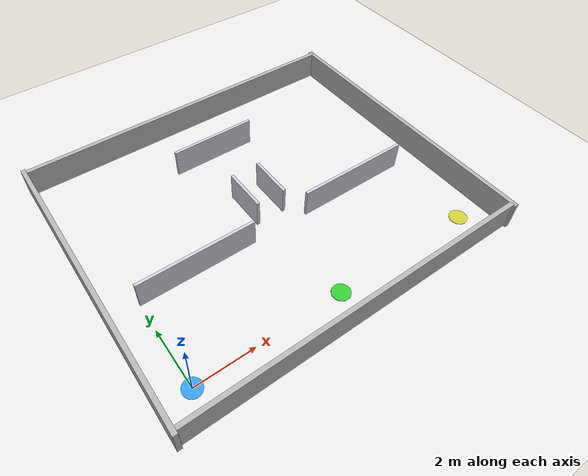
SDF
<?xml version="1.0" ?>
<sdf version="1.6">
  <world name="office">

    <!-- 物理エンジン -->
    <physics type="ode">
      <max_step_size>0.001</max_step_size>
      <real_time_factor>1.0</real_time_factor>
    </physics>

    <!-- 照明 -->
    <light name="sun" type="directional">
      <cast_shadows>true</cast_shadows>
      <pose>5 4 10 0 0 0</pose>
      <diffuse>0.8 0.8 0.8 1</diffuse>
      <specular>0.2 0.2 0.2 1</specular>
      <direction>-0.5 0.1 -0.9</direction>
    </light>

    <light name="ceiling_1" type="point">
      <pose>5 4 3 0 0 0</pose>
      <diffuse>0.4 0.4 0.4 1</diffuse>
      <range>20</range>
    </light>

    <!-- 地面 -->
    <model name="ground_plane">
      <static>true</static>
      <link name="link">
        <collision name="collision">
          <geometry>
            <plane><normal>0 0 1</normal><size>20 16</size></plane>
          </geometry>
        </collision>
        <visual name="visual">
          <geometry>
            <plane><normal>0 0 1</normal><size>20 16</size></plane>
          </geometry>
          <material>
            <ambient>0.9 0.9 0.9 1</ambient>
            <diffuse>0.9 0.9 0.9 1</diffuse>
          </material>
        </visual>
      </link>
    </model>

    <!-- === 外壁 === -->
    <!-- 南壁 (y=-1) -->
    <model name="wall_south">
      <static>true</static>
      <pose>5 -1 0.5 0 0 0</pose>
      <link name="link">
        <collision name="collision"><geometry><box><size>12 0.15 1.0</size></box></geometry></collision>
        <visual name="visual"><geometry><box><size>12 0.15 1.0</size></box></geometry>
          <material><ambient>0.7 0.7 0.7 1</ambient></material>
        </visual>
      </link>
    </model>

    <!-- 北壁 (y=9) -->
    <model name="wall_north">
      <static>true</static>
      <pose>5 9 0.5 0 0 0</pose>
      <link name="link">
        <collision name="collision"><geometry><box><size>12 0.15 1.0</size></box></geometry></collision>
        <visual name="visual"><geometry><box><size>12 0.15 1.0</size></box></geometry>
          <material><ambient>0.7 0.7 0.7 1</ambient></material>
        </visual>
      </link>
    </model>

    <!-- 西壁 (x=-1) -->
    <model name="wall_west">
      <static>true</static>
      <pose>-1 4 0.5 0 0 0</pose>
      <link name="link">
        <collision name="collision"><geometry><box><size>0.15 10.3 1.0</size></box></geometry></collision>
        <visual name="visual"><geometry><box><size>0.15 10.3 1.0</size></box></geometry>
          <material><ambient>0.7 0.7 0.7 1</ambient></material>
        </visual>
      </link>
    </model>

    <!-- 東壁 (x=11) -->
    <model name="wall_east">
      <static>true</static>
      <pose>11 4 0.5 0 0 0</pose>
      <link name="link">
        <collision name="collision"><geometry><box><size>0.15 10.3 1.0</size></box></geometry></collision>
        <visual name="visual"><geometry><box><size>0.15 10.3 1.0</size></box></geometry>
          <material><ambient>0.7 0.7 0.7 1</ambient></material>
        </visual>
      </link>
    </model>

    <!-- === 内壁（部屋仕切り） === -->
    <!-- 会議室A 南壁 (y=3) -->
    <model name="wall_room_a_south">
      <static>true</static>
      <pose>2 3 0.5 0 0 0</pose>
      <link name="link">
        <collision name="collision"><geometry><box><size>4 0.1 1.0</size></box></geometry></collision>
        <visual name="visual"><geometry><box><size>4 0.1 1.0</size></box></geometry>
          <material><ambient>0.8 0.8 0.85 1</ambient></material>
        </visual>
      </link>
    </model>

    <!-- 会議室A 東壁 (x=4.5) 開口あり -->
    <model name="wall_room_a_east">
      <static>true</static>
      <pose>4.5 4.25 0.5 0 0 0</pose>
      <link name="link">
        <collision name="collision"><geometry><box><size>0.1 1.5 1.0</size></box></geometry></collision>
        <visual name="visual"><geometry><box><size>0.1 1.5 1.0</size></box></geometry>
          <material><ambient>0.8 0.8 0.85 1</ambient></material>
        </visual>
      </link>
    </model>

    <!-- 会議室B 南壁 (y=3) -->
    <model name="wall_room_b_south">
      <static>true</static>
      <pose>8 3 0.5 0 0 0</pose>
      <link name="link">
        <collision name="collision"><geometry><box><size>4 0.1 1.0</size></box></geometry></collision>
        <visual name="visual"><geometry><box><size>4 0.1 1.0</size></box></geometry>
          <material><ambient>0.8 0.8 0.85 1</ambient></material>
        </visual>
      </link>
    </model>

    <!-- 会議室B 西壁 (x=5.5) 開口あり -->
    <model name="wall_room_b_west">
      <static>true</static>
      <pose>5.5 4.25 0.5 0 0 0</pose>
      <link name="link">
        <collision name="collision"><geometry><box><size>0.1 1.5 1.0</size></box></geometry></collision>
        <visual name="visual"><geometry><box><size>0.1 1.5 1.0</size></box></geometry>
          <material><ambient>0.8 0.8 0.85 1</ambient></material>
        </visual>
      </link>
    </model>

    <!-- 休憩室仕切り (y=7) -->
    <model name="wall_breakroom">
      <static>true</static>
      <pose>5 7 0.5 0 0 0</pose>
      <link name="link">
        <collision name="collision"><geometry><box><size>3 0.1 1.0</size></box></geometry></collision>
        <visual name="visual"><geometry><box><size>3 0.1 1.0</size></box></geometry>
          <material><ambient>0.8 0.8 0.85 1</ambient></material>
        </visual>
      </link>
    </model>

    <!-- === 地点マーカー（視覚的な目印） === -->
    <!-- 充電ステーション (0, 0) -->
    <model name="marker_charging">
      <static>true</static>
      <pose>0 0 0.01 0 0 0</pose>
      <link name="link">
        <visual name="visual"><geometry><cylinder><radius>0.3</radius><length>0.02</length></cylinder></geometry>
          <material><ambient>0.2 0.6 1.0 1</ambient><diffuse>0.2 0.6 1.0 1</diffuse></material>
        </visual>
      </link>
    </model>

    <!-- 受付 (5, 0) -->
    <model name="marker_reception">
      <static>true</static>
      <pose>5 0 0.01 0 0 0</pose>
      <link name="link">
        <visual name="visual"><geometry><cylinder><radius>0.3</radius><length>0.02</length></cylinder></geometry>
          <material><ambient>0.2 0.8 0.2 1</ambient><diffuse>0.2 0.8 0.2 1</diffuse></material>
        </visual>
      </link>
    </model>

    <!-- エントランス (10, 0) -->
    <model name="marker_entrance">
      <static>true</static>
      <pose>10 0 0.01 0 0 0</pose>
      <link name="link">
        <visual name="visual"><geometry><cylinder><radius>0.3</radius><length>0.02</length></cylinder></geometry>
          <material><ambient>0.8 0.8 0.2 1</ambient><diffuse>0.8 0.8 0.2 1</diffuse></material>
        </visual>
      </link>
    </model>

  </world>
</sdf>
